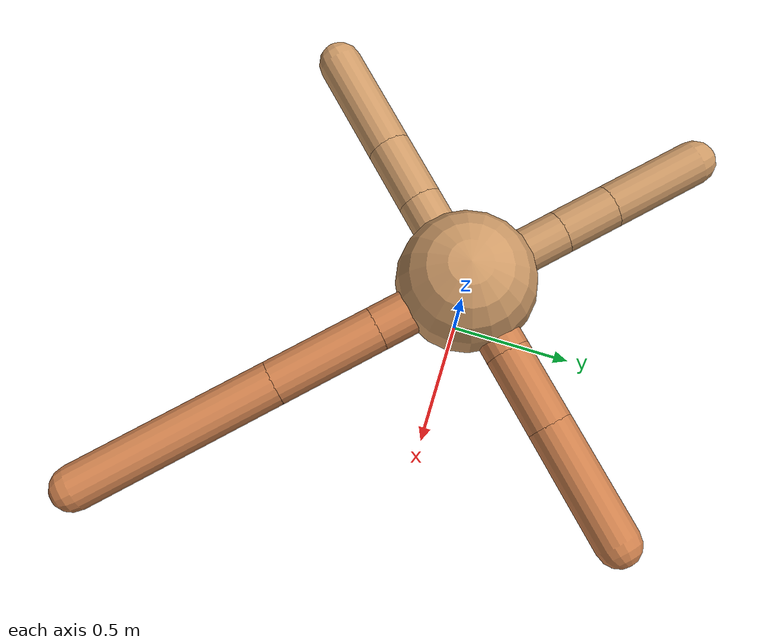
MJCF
<mujoco model="ant">
  <compiler angle="degree" coordinate="local" inertiafromgeom="true" />
  <option integrator="RK4" timestep="0.01" />
  <custom>
    <numeric data="0.0 0.0 0.55 1.0 0.0 0.0 0.0 0.0 1.0 0.0 -1.0 0.0 -1.0 0.0 1.0" name="init_qpos" />
  </custom>
  <default>
    <joint armature="1" damping="1" limited="true" />
    <geom conaffinity="0" condim="3" density="5.0" friction="1.5 0.1 0.1" margin="0.01" rgba="0.8 0.6 0.4 1" />
  </default>
  <worldbody>
    <body name="torso" pos="0 0 0.75">
      <geom name="torso_geom" pos="0 0 0" size="0.25" type="sphere" />

      <body name="front_left_leg" pos="0 0 0">
        <geom fromto="0.0 0.0 0.0 0.20219790905219337 0.20219790905219337 0.0" name="aux_1_geom" size="0.08" type="capsule" rgba=".8 .5 .3 1" />
        <body name="aux_1" pos="0.20219790905219337 0.20219790905219337 0.0">
          <joint axis="0 0 1" name="hip_1" pos="0.0 0.0 0.0" range="-40 40" type="hinge" />
          <geom fromto="0.0 0.0 0.0 0.1986754898206618 0.1986754898206618 0.0" name="left_leg_geom" size="0.08" type="capsule" rgba=".8 .5 .3 1" />
          <body pos="0.1986754898206618 0.1986754898206618 0.0" name="front_left_foot">
            <joint axis="-1 1 0" name="ankle_1" pos="0.0 0.0 0.0" range="30 100" type="hinge" />
            <geom fromto="0.0 0.0 0.0 0.3059480230506836 0.3059480230506836 0.0" name="left_ankle_geom" size="0.08" type="capsule" rgba=".8 .5 .3 1" />
          </body>
        </body>
      </body>
      <body name="front_right_leg" pos="0 0 0">
        <geom fromto="0.0 0.0 0.0 -0.2680024955660228 0.2680024955660228 0.0" name="aux_2_geom" size="0.08" type="capsule" />
        <body name="aux_2" pos="-0.2680024955660228 0.2680024955660228 0.0">
          <joint axis="0 0 1" name="hip_2" pos="0.0 0.0 0.0" range="-40 40" type="hinge" />
          <geom fromto="0.0 0.0 0.0 -0.14436922890093343 0.14436922890093343 0.0" name="right_leg_geom" size="0.08" type="capsule" />
          <body pos="-0.14436922890093343 0.14436922890093343 0.0" name="front_right_foot">
            <joint axis="1 1 0" name="ankle_2" pos="0.0 0.0 0.0" range="-100 -30" type="hinge" />
            <geom fromto="0.0 0.0 0.0 -0.25203487200487645 0.25203487200487645 0.0" name="right_ankle_geom" size="0.08" type="capsule" />
          </body>
        </body>
      </body>
      <body name="left_back_leg" pos="0 0 0">
        <geom fromto="0.0 0.0 0.0 -0.23975314189866964 -0.23975314189866964 0.0" name="aux_3_geom" size="0.08" type="capsule" />
        <body name="aux_3" pos="-0.23975314189866964 -0.23975314189866964 0.0">
          <joint axis="0 0 1" name="hip_3" pos="0.0 0.0 0.0" range="-40 40" type="hinge" />
          <geom fromto="0.0 0.0 0.0 -0.1639979967515464 -0.1639979967515464 0.0" name="back_leg_geom" size="0.08" type="capsule" />
          <body pos="-0.1639979967515464 -0.1639979967515464 0.0" name="left_back_foot">
            <joint axis="-1 1 0" name="ankle_3" pos="0.0 0.0 0.0" range="-100 -30" type="hinge" />
            <geom fromto="0.0 0.0 0.0 -0.27216411585206424 -0.27216411585206424 0.0" name="third_ankle_geom" size="0.08" type="capsule" />
          </body>
        </body>
      </body>
      <body name="right_back_leg" pos="0 0 0">
        <geom fromto="0.0 0.0 0.0 0.2516018448619397 -0.2516018448619397 0.0" name="aux_4_geom" size="0.08" type="capsule" rgba=".8 .5 .3 1" />
        <body name="aux_4" pos="0.2516018448619397 -0.2516018448619397 0.0">
          <joint axis="0 0 1" name="hip_4" pos="0.0 0.0 0.0" range="-40 40" type="hinge" />
          <geom fromto="0.0 0.0 0.0 0.2794355882983168 -0.2794355882983168 0.0" name="rightback_leg_geom" size="0.08" type="capsule" rgba=".8 .5 .3 1" />
          <body pos="0.2794355882983168 -0.2794355882983168 0.0" name="right_back_foot">
            <joint axis="1 1 0" name="ankle_4" pos="0.0 0.0 0.0" range="30 100" type="hinge" />
            <geom fromto="0.0 0.0 0.0 0.5172450123882613 -0.5172450123882613 0.0" name="fourth_ankle_geom" size="0.08" type="capsule" rgba=".8 .5 .3 1" />
          </body>
        </body>
      </body>
    </body>
  </worldbody>
  <actuator>
    <motor ctrllimited="true" ctrlrange="-1.0 1.0" joint="hip_4" gear="150" />
    <motor ctrllimited="true" ctrlrange="-1.0 1.0" joint="ankle_4" gear="150" />
    <motor ctrllimited="true" ctrlrange="-1.0 1.0" joint="hip_1" gear="150" />
    <motor ctrllimited="true" ctrlrange="-1.0 1.0" joint="ankle_1" gear="150" />
    <motor ctrllimited="true" ctrlrange="-1.0 1.0" joint="hip_2" gear="150" />
    <motor ctrllimited="true" ctrlrange="-1.0 1.0" joint="ankle_2" gear="150" />
    <motor ctrllimited="true" ctrlrange="-1.0 1.0" joint="hip_3" gear="150" />
    <motor ctrllimited="true" ctrlrange="-1.0 1.0" joint="ankle_3" gear="150" />
  </actuator>
</mujoco>
